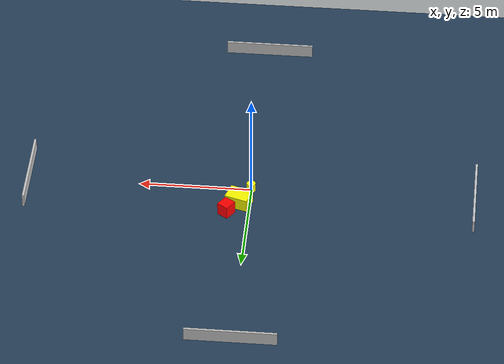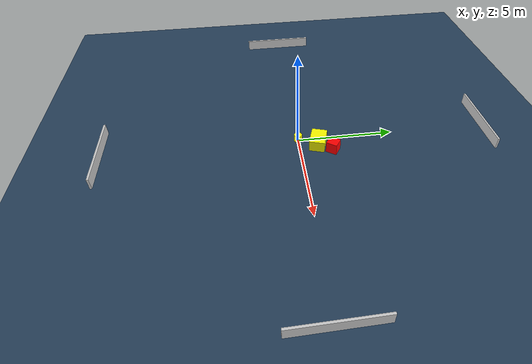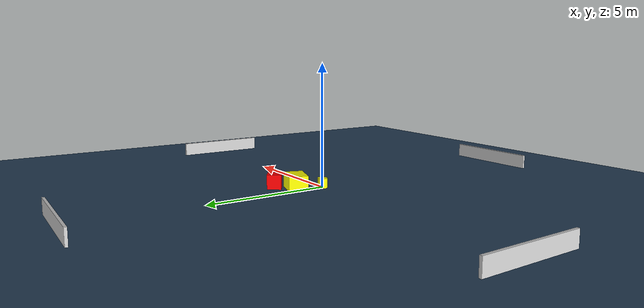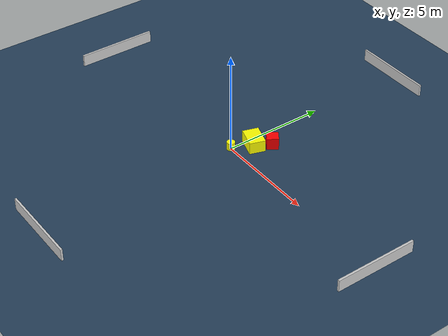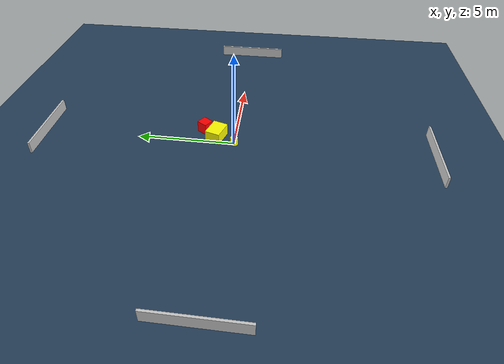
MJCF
<?xml version="1.0" ?>
<mujoco model="generated_environment">
  <option timestep="0.01" integrator="RK4" cone="elliptic"/>
  <default>
    <geom density="1"/>
  </default>
  <asset>
    <texture builtin="gradient" height="3072" name="skybox" rgb1="0.3 0.5 0.7" rgb2="0 0 0" type="skybox" width="512"/>
    <texture builtin="checker" height="300" name="groundplane" rgb1="0.2 0.3 0.4" rgb2="0.1 0.2 0.3" type="2d" width="300"/>
    <material name="groundplane" reflectance="0.2" texrepeat="5 5" texture="groundplane"/>
  </asset>
  <worldbody>
    <light dir="0 0 -1" directional="true" pos="0 0 1.5"/>
    <geom condim="3" friction="0.5 0.005 0.001" material="groundplane" name="floor" pos="0 0 0" size="0 0 0.05" type="plane"/>
    <body name="walls">
      <geom name="wall_1" condim="4" pos="-10.0 0.0 0.3" rgba="0.800000011920929 0.800000011920929 0.800000011920929 1.0" size="0.05 2.0 0.3" type="box"/>
      <geom name="wall_2" condim="4" pos="10.0 0.0 0.3" rgba="0.800000011920929 0.800000011920929 0.800000011920929 1.0" size="0.05 2.0 0.3" type="box"/>
      <geom name="wall_3" condim="4" pos="0.0 -10.0 0.3" rgba="0.800000011920929 0.800000011920929 0.800000011920929 1.0" size="2.0 0.05 0.3" type="box"/>
      <geom name="wall_4" condim="4" pos="0.0 10.0 0.3" rgba="0.800000011920929 0.800000011920929 0.800000011920929 1.0" size="2.0 0.05 0.3" type="box"/>
    </body>
    <body name="robot">
      <joint name="joint_x" type="slide" pos="0 0 0" axis="1 0 0"/>
      <joint name="joint_y" type="slide" pos="0 0 0" axis="0 1 0"/>
      <geom name="robot" type="cylinder" pos="0.0 0.0 0.2" size="0.2 0.2 0.0" mass="5.0" friction="1.0 0.005 0.0001" condim="4" rgba="1.0 1.0 0.0 1.0"/>
    </body>
    <body name="obstacle_1_movable">
      <geom name="obstacle_1_movable" condim="4" pos="0.4600034097961396 0.9785110516977309 0.3" euler="0 0 342.1998320259744" friction="0.0 0.005 0.001" rgba="1.0 1.0 0.0 1.0" size="0.5259684409682732 0.3931955172443276 0.3" type="box" mass="0.1"/>
      <joint type="free"/>
    </body>
    <body name="obstacle_2_static">
      <geom name="obstacle_2_static" condim="4" pos="0.9639481437895747 1.6670518022575134 0.3" euler="0 0 145.89965616663426" friction="0.0 0.005 0.001" rgba="1.0 0.0 0.0 1.0" size="0.27195271930212506 0.28561985882624263 0.3" type="box"/>
    </body>
  </worldbody>
  <actuator>
    <motor name="actuator_x" joint="joint_x" gear="1" ctrlrange="-1 1"/>
    <motor name="actuator_y" joint="joint_y" gear="1" ctrlrange="-1 1"/>
  </actuator>
</mujoco>
